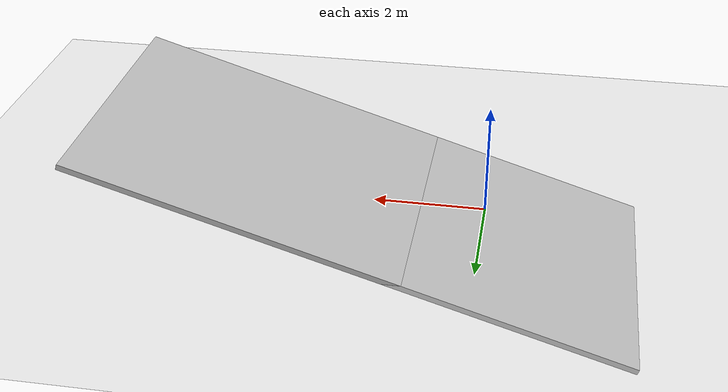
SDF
<?xml version="1.0" ?>

<sdf version="1.5">
    <world name="default">
        <!-- Target real time factor is the product of max_step_size and real_time_update_rate -->
        <!-- Negative real_time_update_rate means that Gazebo will run as fast as possible -->
        <physics type="ode">
            <type>world</type>
            <max_step_size>0.001</max_step_size>
            <real_time_update_rate>1000</real_time_update_rate>
            <iters>500</iters>
        </physics>
        <!-- A global light source -->
        <include>
            <uri>model://sun</uri>
        </include>
        <!-- A ground plane -->
        <include>
            <uri>model://ground_plane</uri>
        </include>
        <model name="box">
      <static>true</static>

      <pose>2 0 0.2 0 -0.3 0</pose>
      <link name="link">
        <collision name="collision">
          <geometry>
            <box>
              <size>10 5 .1</size>
            </box>
          </geometry>
        </collision>
        <visual name="visual">
          <geometry>
            <box>
              <size>10 5 .1</size>
            </box>
          </geometry>
        </visual>
      </link>
    </model>
    </world>
</sdf>
